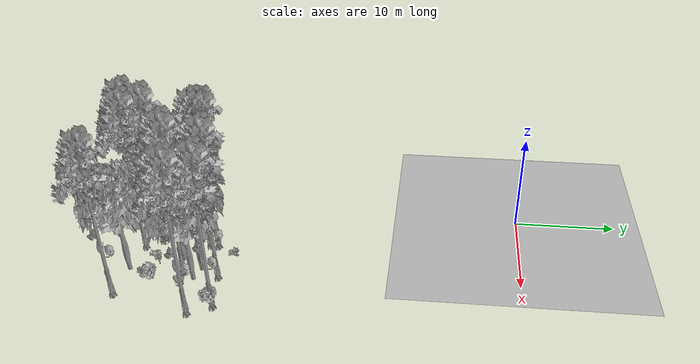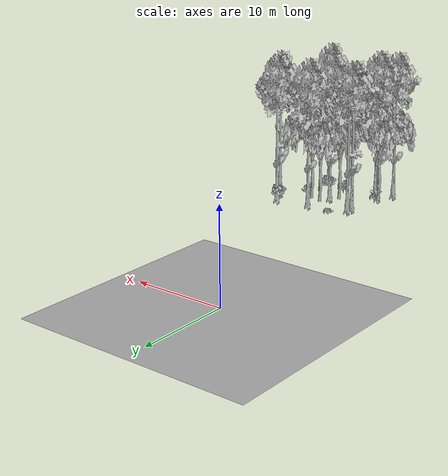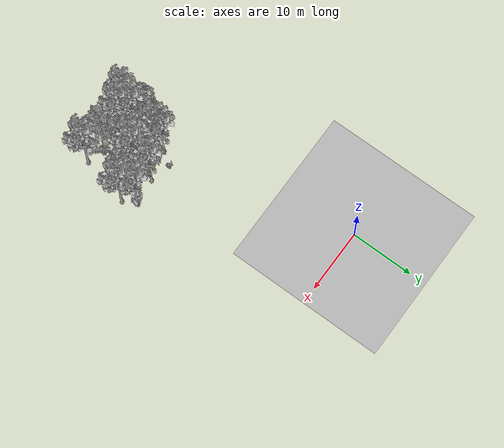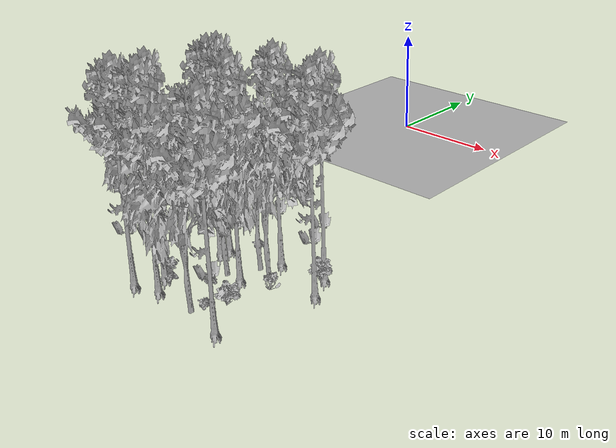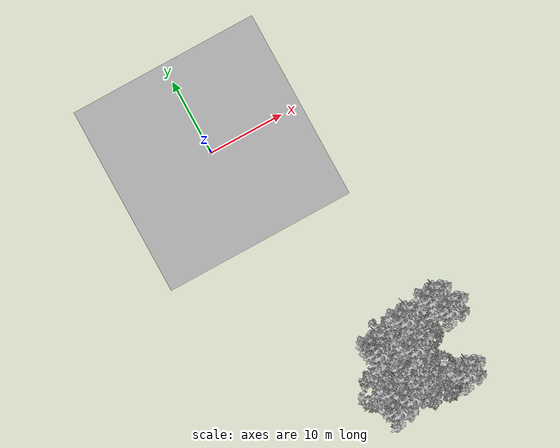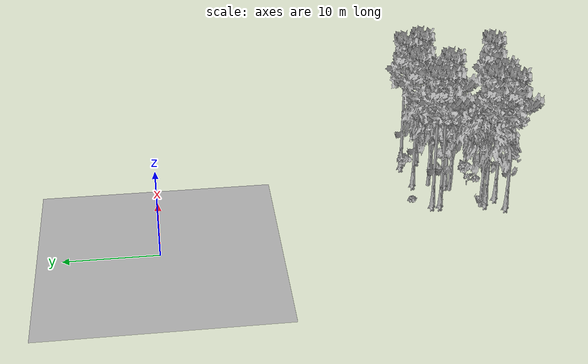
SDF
<sdf version="1.7">
 <world name="default">
  <model name="ground_plane">
   <static>1</static>
   <link name="link">
    <collision name="collision">
     <pose>-50 0 0 0 -0 0</pose>
     <geometry><plane><normal>0 0 1</normal><size>80 80</size></plane></geometry>
     <surface><contact><ode><min_depth>0.01</min_depth><max_vel>0</max_vel></ode></contact></surface>
    </collision>
    <visual name="grass">
     <cast_shadows>0</cast_shadows>
     <geometry>
      <mesh>
       <scale>0.46714285714285714 0.46714285714285714 0.1</scale>
       <uri>file://grass_plane/meshes/grass_plane.dae</uri>
      </mesh>
     </geometry>
    </visual>
   </link>
  </model>
  <model name="Tree 77">
   <static>1</static>
   <pose>8.778922814904377 -32.74176275285177 0 1.57079 -0 0</pose>
   <link name="link">
    <collision name="collision">
     <geometry><mesh><scale>3.5 5 3.5</scale><uri>model://tree_2/meshes/tree_2.obj</uri></mesh></geometry>
    </collision>
    <visual name="visual">
     <geometry><mesh><scale>3.5 5 3.5</scale><uri>model://tree_2/meshes/tree_2.obj</uri></mesh></geometry>
    </visual>
   </link>
  </model>
  <model name="Tree 112">
   <static>1</static>
   <pose>4.9939366948107065 -35.27708195103169 0 1.57079 -0 0</pose>
   <link name="link">
    <collision name="collision">
     <geometry><mesh><scale>3.5 5 3.5</scale><uri>model://tree_2/meshes/tree_2.obj</uri></mesh></geometry>
    </collision>
    <visual name="visual">
     <geometry><mesh><scale>3.5 5 3.5</scale><uri>model://tree_2/meshes/tree_2.obj</uri></mesh></geometry>
    </visual>
   </link>
  </model>
  <model name="Tree 124">
   <static>1</static>
   <pose>4.75274452582137 -38.04846471524159 0 1.57079 -0 0</pose>
   <link name="link">
    <collision name="collision">
     <geometry><mesh><scale>3.5 5 3.5</scale><uri>model://tree_9/meshes/tree_9.obj</uri></mesh></geometry>
    </collision>
    <visual name="visual">
     <geometry><mesh><scale>3.5 5 3.5</scale><uri>model://tree_9/meshes/tree_9.obj</uri></mesh></geometry>
    </visual>
   </link>
  </model>
  <model name="Tree 144">
   <static>1</static>
   <pose>13.975219504301357 -38.09529920724904 0 1.57079 -0 0</pose>
   <link name="link">
    <collision name="collision">
     <geometry><mesh><scale>3.5 5 3.5</scale><uri>model://tree_9/meshes/tree_9.obj</uri></mesh></geometry>
    </collision>
    <visual name="visual">
     <geometry><mesh><scale>3.5 5 3.5</scale><uri>model://tree_9/meshes/tree_9.obj</uri></mesh></geometry>
    </visual>
   </link>
  </model>
  <model name="Tree 151">
   <static>1</static>
   <pose>14.75371309140322 -28.369731630509555 0 1.57079 -0 0</pose>
   <link name="link">
    <collision name="collision">
     <geometry><mesh><scale>3.5 5 3.5</scale><uri>model://tree_9/meshes/tree_9.obj</uri></mesh></geometry>
    </collision>
    <visual name="visual">
     <geometry><mesh><scale>3.5 5 3.5</scale><uri>model://tree_9/meshes/tree_9.obj</uri></mesh></geometry>
    </visual>
   </link>
  </model>
  <model name="Tree 206">
   <static>1</static>
   <pose>10.634374050595852 -37.55370733151227 0 1.57079 -0 0</pose>
   <link name="link">
    <collision name="collision">
     <geometry><mesh><scale>3.5 5 3.5</scale><uri>model://tree_2/meshes/tree_2.obj</uri></mesh></geometry>
    </collision>
    <visual name="visual">
     <geometry><mesh><scale>3.5 5 3.5</scale><uri>model://tree_2/meshes/tree_2.obj</uri></mesh></geometry>
    </visual>
   </link>
  </model>
  <model name="Tree 212">
   <static>1</static>
   <pose>6.052531903907891 -30.091199653647802 0 1.57079 -0 0</pose>
   <link name="link">
    <collision name="collision">
     <geometry><mesh><scale>3.5 5 3.5</scale><uri>model://tree_9/meshes/tree_9.obj</uri></mesh></geometry>
    </collision>
    <visual name="visual">
     <geometry><mesh><scale>3.5 5 3.5</scale><uri>model://tree_9/meshes/tree_9.obj</uri></mesh></geometry>
    </visual>
   </link>
  </model>
  <model name="Tree 218">
   <static>1</static>
   <pose>5.620554818678208 -35.95986649774592 0 1.57079 -0 0</pose>
   <link name="link">
    <collision name="collision">
     <geometry><mesh><scale>3.5 5 3.5</scale><uri>model://tree_9/meshes/tree_9.obj</uri></mesh></geometry>
    </collision>
    <visual name="visual">
     <geometry><mesh><scale>3.5 5 3.5</scale><uri>model://tree_9/meshes/tree_9.obj</uri></mesh></geometry>
    </visual>
   </link>
  </model>
  <model name="Tree 283">
   <static>1</static>
   <pose>10.066079730829408 -30.58725629453713 0 1.57079 -0 0</pose>
   <link name="link">
    <collision name="collision">
     <geometry><mesh><scale>3.5 5 3.5</scale><uri>model://tree_2/meshes/tree_2.obj</uri></mesh></geometry>
    </collision>
    <visual name="visual">
     <geometry><mesh><scale>3.5 5 3.5</scale><uri>model://tree_2/meshes/tree_2.obj</uri></mesh></geometry>
    </visual>
   </link>
  </model>
  <model name="Tree 286">
   <static>1</static>
   <pose>5.9962389173231045 -30.96154480456395 0 1.57079 -0 0</pose>
   <link name="link">
    <collision name="collision">
     <geometry><mesh><scale>3.5 5 3.5</scale><uri>model://tree_9/meshes/tree_9.obj</uri></mesh></geometry>
    </collision>
    <visual name="visual">
     <geometry><mesh><scale>3.5 5 3.5</scale><uri>model://tree_9/meshes/tree_9.obj</uri></mesh></geometry>
    </visual>
   </link>
  </model>
  <model name="Tree 356">
   <static>1</static>
   <pose>10.712077171741626 -28.912467733784197 0 1.57079 -0 0</pose>
   <link name="link">
    <collision name="collision">
     <geometry><mesh><scale>3.5 5 3.5</scale><uri>model://tree_9/meshes/tree_9.obj</uri></mesh></geometry>
    </collision>
    <visual name="visual">
     <geometry><mesh><scale>3.5 5 3.5</scale><uri>model://tree_9/meshes/tree_9.obj</uri></mesh></geometry>
    </visual>
   </link>
  </model>
  <model name="Tree 378">
   <static>1</static>
   <pose>15.838155963038368 -30.484068501453685 0 1.57079 -0 0</pose>
   <link name="link">
    <collision name="collision">
     <geometry><mesh><scale>3.5 5 3.5</scale><uri>model://tree_9/meshes/tree_9.obj</uri></mesh></geometry>
    </collision>
    <visual name="visual">
     <geometry><mesh><scale>3.5 5 3.5</scale><uri>model://tree_9/meshes/tree_9.obj</uri></mesh></geometry>
    </visual>
   </link>
  </model>
  <model name="Tree 430">
   <static>1</static>
   <pose>10.078629912860912 -32.521196537579804 0 1.57079 -0 0</pose>
   <link name="link">
    <collision name="collision">
     <geometry><mesh><scale>3.5 5 3.5</scale><uri>model://tree_9/meshes/tree_9.obj</uri></mesh></geometry>
    </collision>
    <visual name="visual">
     <geometry><mesh><scale>3.5 5 3.5</scale><uri>model://tree_9/meshes/tree_9.obj</uri></mesh></geometry>
    </visual>
   </link>
  </model>
  <model name="Tree 431">
   <static>1</static>
   <pose>11.50471196485632 -31.03423230732264 0 1.57079 -0 0</pose>
   <link name="link">
    <collision name="collision">
     <geometry><mesh><scale>3.5 5 3.5</scale><uri>model://tree_2/meshes/tree_2.obj</uri></mesh></geometry>
    </collision>
    <visual name="visual">
     <geometry><mesh><scale>3.5 5 3.5</scale><uri>model://tree_2/meshes/tree_2.obj</uri></mesh></geometry>
    </visual>
   </link>
  </model>
  <model name="Tree 572">
   <static>1</static>
   <pose>6.792878500644157 -37.380184343955996 0 1.57079 -0 0</pose>
   <link name="link">
    <collision name="collision">
     <geometry><mesh><scale>3.5 5 3.5</scale><uri>model://tree_9/meshes/tree_9.obj</uri></mesh></geometry>
    </collision>
    <visual name="visual">
     <geometry><mesh><scale>3.5 5 3.5</scale><uri>model://tree_9/meshes/tree_9.obj</uri></mesh></geometry>
    </visual>
   </link>
  </model>
  <model name="Bush 0">
   <static>1</static>
   <pose>11.959559872513644 -35.377480190834724 0 1.57079 -0 0</pose>
   <link name="link">
    <collision name="collision">
     <geometry><mesh><scale>2 2 2</scale><uri>model://bush_1/meshes/bush_1.obj</uri></mesh></geometry>
     <surface><contact><collide_without_contact>false</collide_without_contact></contact></surface>
    </collision>
    <visual name="visual">
     <geometry><mesh><scale>2 2 2</scale><uri>model://bush_1/meshes/bush_1.obj</uri></mesh></geometry>
    </visual>
   </link>
  </model>
  <model name="Bush 99">
   <static>1</static>
   <pose>5.417188698737924 -35.17698715847557 0 1.57079 -0 0</pose>
   <link name="link">
    <collision name="collision">
     <geometry><mesh><scale>2 2 2</scale><uri>model://bush_0/meshes/bush_0.obj</uri></mesh></geometry>
     <surface><contact><collide_without_contact>false</collide_without_contact></contact></surface>
    </collision>
    <visual name="visual">
     <geometry><mesh><scale>2 2 2</scale><uri>model://bush_0/meshes/bush_0.obj</uri></mesh></geometry>
    </visual>
   </link>
  </model>
  <model name="Bush 292">
   <static>1</static>
   <pose>5.874212713692842 -35.67815051806 0 1.57079 -0 0</pose>
   <link name="link">
    <collision name="collision">
     <geometry><mesh><scale>2 2 2</scale><uri>model://bush_2/meshes/bush_2.obj</uri></mesh></geometry>
     <surface><contact><collide_without_contact>false</collide_without_contact></contact></surface>
    </collision>
    <visual name="visual">
     <geometry><mesh><scale>2 2 2</scale><uri>model://bush_2/meshes/bush_2.obj</uri></mesh></geometry>
    </visual>
   </link>
  </model>
  <model name="Bush 414">
   <static>1</static>
   <pose>7.3233121816223345 -28.16070245959515 0 1.57079 -0 0</pose>
   <link name="link">
    <collision name="collision">
     <geometry><mesh><scale>2 2 2</scale><uri>model://bush_2/meshes/bush_2.obj</uri></mesh></geometry>
     <surface><contact><collide_without_contact>false</collide_without_contact></contact></surface>
    </collision>
    <visual name="visual">
     <geometry><mesh><scale>2 2 2</scale><uri>model://bush_2/meshes/bush_2.obj</uri></mesh></geometry>
    </visual>
   </link>
  </model>
  <model name="Bush 443">
   <static>1</static>
   <pose>14.62523727370727 -28.796155360775415 0 1.57079 -0 0</pose>
   <link name="link">
    <collision name="collision">
     <geometry><mesh><scale>2 2 2</scale><uri>model://bush_1/meshes/bush_1.obj</uri></mesh></geometry>
     <surface><contact><collide_without_contact>false</collide_without_contact></contact></surface>
    </collision>
    <visual name="visual">
     <geometry><mesh><scale>2 2 2</scale><uri>model://bush_1/meshes/bush_1.obj</uri></mesh></geometry>
    </visual>
   </link>
  </model>
  <model name="Bush 566">
   <static>1</static>
   <pose>12.733597564377128 -31.984907606547477 0 1.57079 -0 0</pose>
   <link name="link">
    <collision name="collision">
     <geometry><mesh><scale>2 2 2</scale><uri>model://bush_4/meshes/bush_4.obj</uri></mesh></geometry>
     <surface><contact><collide_without_contact>false</collide_without_contact></contact></surface>
    </collision>
    <visual name="visual">
     <geometry><mesh><scale>2 2 2</scale><uri>model://bush_4/meshes/bush_4.obj</uri></mesh></geometry>
    </visual>
   </link>
  </model>
  <model name="Bush 593">
   <static>1</static>
   <pose>10.716628937596546 -36.30768419782989 0 1.57079 -0 0</pose>
   <link name="link">
    <collision name="collision">
     <geometry><mesh><scale>2 2 2</scale><uri>model://bush_2/meshes/bush_2.obj</uri></mesh></geometry>
     <surface><contact><collide_without_contact>false</collide_without_contact></contact></surface>
    </collision>
    <visual name="visual">
     <geometry><mesh><scale>2 2 2</scale><uri>model://bush_2/meshes/bush_2.obj</uri></mesh></geometry>
    </visual>
   </link>
  </model>
  <model name="Bush 601">
   <static>1</static>
   <pose>9.740550890947567 -34.89826235391661 0 1.57079 -0 0</pose>
   <link name="link">
    <collision name="collision">
     <geometry><mesh><scale>2 2 2</scale><uri>model://bush_5/meshes/bush_5.obj</uri></mesh></geometry>
     <surface><contact><collide_without_contact>false</collide_without_contact></contact></surface>
    </collision>
    <visual name="visual">
     <geometry><mesh><scale>2 2 2</scale><uri>model://bush_5/meshes/bush_5.obj</uri></mesh></geometry>
    </visual>
   </link>
  </model>
 </world>
</sdf>
